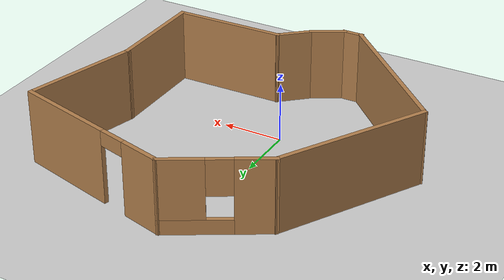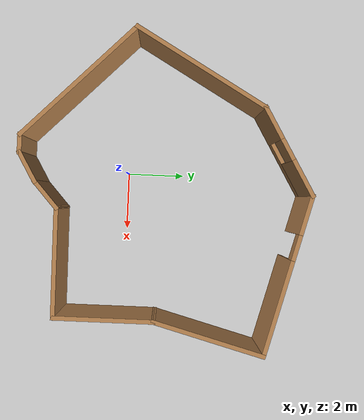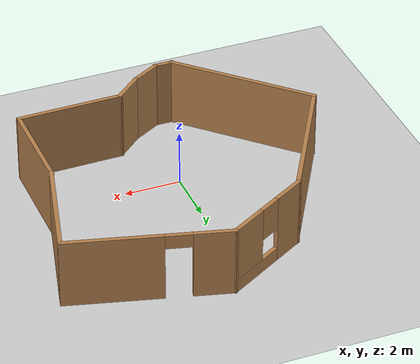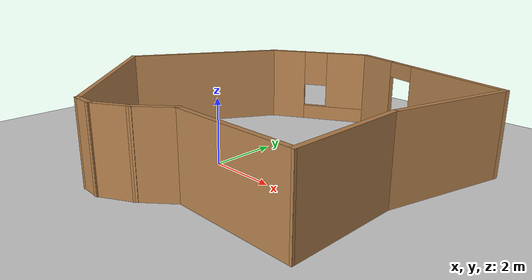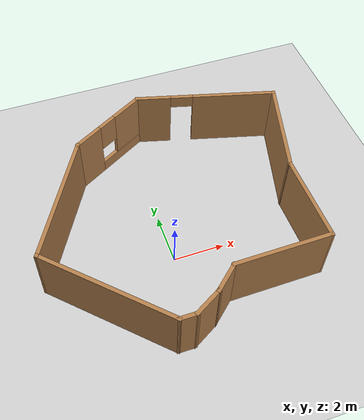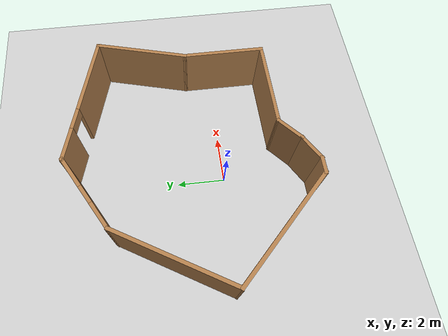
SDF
<sdf version="1.7">
 <world name="default">
  <light name="sun" type="directional">
   <pose>0 0 10 0 -0 0</pose>
   <diffuse>0.8 0.8 0.8 1</diffuse>
   <specular>0.2 0.2 0.2 1</specular>
   <attenuation>
    <range>1000</range>
    <constant>0.9</constant>
    <linear>0.01</linear>
    <quadratic>0.001</quadratic>
   </attenuation>
   <direction>-0.5 0.1 -0.9</direction>
   <spot><inner_angle>0</inner_angle><outer_angle>0</outer_angle><falloff>0</falloff></spot>
  </light>
  <model name="ground_plane">
   <static>1</static>
   <link name="link">
    <collision name="collision">
     <geometry><plane><normal>0 0 1</normal><size>100 100</size></plane></geometry>
     <surface><friction><ode><mu>100</mu><mu2>50</mu2></ode></friction></surface>
    </collision>
    <visual name="visual">
     <cast_shadows>0</cast_shadows>
     <geometry><plane><normal>0 0 1</normal><size>100 100</size></plane></geometry>
     <material>
      <script><uri>file://media/materials/scripts/gazebo.material</uri><name>Gazebo/Grey</name></script>
     </material>
    </visual>
   </link>
  </model>
  <gravity>0 0 -9.8</gravity>
  <magnetic_field>6e-06 2.3e-05 -4.2e-05</magnetic_field>
  <atmosphere type="adiabatic"/>
  <physics type="ode">
   <max_step_size>0.001</max_step_size>
   <real_time_factor>1</real_time_factor>
   <real_time_update_rate>1000</real_time_update_rate>
  </physics>
  <scene><ambient>0.4 0.4 0.4 1</ambient><background>0.7 0.7 0.7 1</background><shadows>1</shadows></scene>
  <audio><device>default</device></audio>
  <spherical_coordinates>
   <surface_model>EARTH_WGS84</surface_model>
   <latitude_deg>0</latitude_deg>
   <longitude_deg>0</longitude_deg>
   <elevation>0</elevation>
   <heading_deg>0</heading_deg>
  </spherical_coordinates>
  <model name="tutorial">
   <pose>0.53828 1.36644 0 0 -0 0</pose>
   <link name="Wall_0">
    <collision name="Wall_0_Collision">
     <geometry><box><size>0.75 0.15 2.5</size></box></geometry>
     <pose>0 0 1.25 0 -0 0</pose>
    </collision>
    <visual name="Wall_0_Visual">
     <pose>0 0 1.25 0 -0 0</pose>
     <geometry><box><size>0.75 0.15 2.5</size></box></geometry>
     <material>
      <script><uri>file://media/materials/scripts/gazebo.material</uri><name>Gazebo/Wood</name></script>
      <ambient>1 1 1 1</ambient>
     </material>
     <meta><layer>0</layer></meta>
    </visual>
    <pose>-1.34006 -4.93557 0 0 -0 0</pose>
   </link>
   <link name="Wall_1">
    <collision name="Wall_1_Collision">
     <geometry><box><size>1.25 0.15 2.5</size></box></geometry>
     <pose>0 0 1.25 0 -0 0</pose>
    </collision>
    <visual name="Wall_1_Visual">
     <pose>0 0 1.25 0 -0 0</pose>
     <geometry><box><size>1.25 0.15 2.5</size></box></geometry>
     <material>
      <script><uri>file://media/materials/scripts/gazebo.material</uri><name>Gazebo/Wood</name></script>
      <ambient>1 1 1 1</ambient>
     </material>
     <meta><layer>0</layer></meta>
    </visual>
    <pose>-0.563744 -4.66057 0 0 -0 0.523599</pose>
   </link>
   <link name="Wall_10">
    <collision name="Wall_10_Collision">
     <geometry><box><size>3.5 0.15 2.5</size></box></geometry>
     <pose>0 0 1.25 0 -0 0</pose>
    </collision>
    <visual name="Wall_10_Visual">
     <pose>0 0 1.25 0 -0 0</pose>
     <geometry><box><size>3.5 0.15 2.5</size></box></geometry>
     <material>
      <script><uri>file://media/materials/scripts/gazebo.material</uri><name>Gazebo/Wood</name></script>
      <ambient>1 1 1 1</ambient>
     </material>
     <meta><layer>0</layer></meta>
    </visual>
    <pose>4.44084 -1.90402 0 0 -0 -1.5708</pose>
   </link>
   <link name="Wall_11">
    <collision name="Wall_11_Collision">
     <geometry><box><size>3.81847 0.15 2.5</size></box></geometry>
     <pose>0 0 1.25 0 -0 0</pose>
    </collision>
    <visual name="Wall_11_Visual">
     <pose>0 0 1.25 0 -0 0</pose>
     <geometry><box><size>3.81847 0.15 2.5</size></box></geometry>
     <material>
      <script><uri>file://media/materials/scripts/gazebo.material</uri><name>Gazebo/Wood</name></script>
      <ambient>1 1 1 1</ambient>
     </material>
     <meta><layer>0</layer></meta>
    </visual>
    <pose>2.60671 -3.59914 0 0 -0 -3.13062</pose>
   </link>
   <link name="Wall_3">
    <collision name="Wall_3_Collision">
     <geometry><box><size>1.3019 0.15 2.5</size></box></geometry>
     <pose>0 0 1.25 0 -0 0</pose>
    </collision>
    <visual name="Wall_3_Visual">
     <pose>0 0 1.25 0 -0 0</pose>
     <geometry><box><size>1.3019 0.15 2.5</size></box></geometry>
     <material>
      <script><uri>file://media/materials/scripts/gazebo.material</uri><name>Gazebo/Wood</name></script>
      <ambient>1 1 1 1</ambient>
     </material>
     <meta><layer>0</layer></meta>
    </visual>
    <pose>0.342582 -4.00241 0 0 -0 -2.41375</pose>
   </link>
   <link name="Wall_5">
    <collision name="Wall_5_Collision">
     <geometry><box><size>5.5 0.15 2.5</size></box></geometry>
     <pose>0 0 1.25 0 -0 0</pose>
    </collision>
    <visual name="Wall_5_Visual">
     <pose>0 0 1.25 0 -0 0</pose>
     <geometry><box><size>5.5 0.15 2.5</size></box></geometry>
     <material>
      <script><uri>file://media/materials/scripts/gazebo.material</uri><name>Gazebo/Wood</name></script>
      <ambient>1 1 1 1</ambient>
     </material>
     <meta><layer>0</layer></meta>
    </visual>
    <pose>-3.53157 -3.04406 0 0 -0 2.35619</pose>
   </link>
   <link name="Wall_6">
    <collision name="Wall_6_Collision">
     <geometry><box><size>5.25 0.15 2.5</size></box></geometry>
     <pose>0 0 1.25 0 -0 0</pose>
    </collision>
    <visual name="Wall_6_Visual">
     <pose>0 0 1.25 0 -0 0</pose>
     <geometry><box><size>5.25 0.15 2.5</size></box></geometry>
     <material>
      <script><uri>file://media/materials/scripts/gazebo.material</uri><name>Gazebo/Wood</name></script>
      <ambient>1 1 1 1</ambient>
     </material>
     <meta><layer>0</layer></meta>
    </visual>
    <pose>-4.14808 1.05582 0 0 -0 1.0472</pose>
   </link>
   <link name="Wall_7">
    <pose>-1.42249 4.10168 0 0 -0 0.523599</pose>
    <visual name="Wall_7_Visual_0">
     <pose>-1.11852 0 1.25 0 -0 0</pose>
     <geometry><box><size>1.26295 0.15 2.5</size></box></geometry>
     <material>
      <script><uri>file://media/materials/scripts/gazebo.material</uri><name>Gazebo/Wood</name></script>
      <ambient>1 1 1 1</ambient>
     </material>
     <meta><layer>0</layer></meta>
    </visual>
    <collision name="Wall_7_Collision_0">
     <geometry><box><size>1.26295 0.15 2.5</size></box></geometry>
     <pose>-1.11852 0 1.25 0 -0 0</pose>
    </collision>
    <visual name="Wall_7_Visual_1">
     <pose>0.631477 0 0.25 0 -0 0</pose>
     <geometry><box><size>2.23705 0.15 0.5</size></box></geometry>
     <material>
      <script><uri>file://media/materials/scripts/gazebo.material</uri><name>Gazebo/Wood</name></script>
      <ambient>1 1 1 1</ambient>
     </material>
     <meta><layer>0</layer></meta>
    </visual>
    <collision name="Wall_7_Collision_1">
     <geometry><box><size>2.23705 0.15 0.5</size></box></geometry>
     <pose>0.631477 0 0.25 0 -0 0</pose>
    </collision>
    <visual name="Wall_7_Visual_2">
     <pose>1.03148 0 1.5 0 -0 0</pose>
     <geometry><box><size>1.43705 0.15 2</size></box></geometry>
     <material>
      <script><uri>file://media/materials/scripts/gazebo.material</uri><name>Gazebo/Wood</name></script>
      <ambient>1 1 1 1</ambient>
     </material>
     <meta><layer>0</layer></meta>
    </visual>
    <collision name="Wall_7_Collision_2">
     <geometry><box><size>1.43705 0.15 2</size></box></geometry>
     <pose>1.03148 0 1.5 0 -0 0</pose>
    </collision>
    <visual name="Wall_7_Visual_3">
     <pose>-0.087046 0 1.9 0 -0 0</pose>
     <geometry><box><size>0.8 0.15 1.2</size></box></geometry>
     <material>
      <script><uri>file://media/materials/scripts/gazebo.material</uri><name>Gazebo/Wood</name></script>
      <ambient>1 1 1 1</ambient>
     </material>
     <meta><layer>0</layer></meta>
    </visual>
    <collision name="Wall_7_Collision_3">
     <geometry><box><size>0.8 0.15 1.2</size></box></geometry>
     <pose>-0.087046 0 1.9 0 -0 0</pose>
    </collision>
   </link>
   <link name="Wall_8">
    <pose>2.7327 4.21449 0 0 -0 -0.261799</pose>
    <visual name="Wall_8_Visual_0">
     <pose>-2.15097 0 1.25 0 -0 0</pose>
     <geometry><box><size>1.44805 0.15 2.5</size></box></geometry>
     <material>
      <script><uri>file://media/materials/scripts/gazebo.material</uri><name>Gazebo/Wood</name></script>
      <ambient>1 1 1 1</ambient>
     </material>
     <meta><layer>0</layer></meta>
    </visual>
    <collision name="Wall_8_Collision_0">
     <geometry><box><size>1.44805 0.15 2.5</size></box></geometry>
     <pose>-2.15097 0 1.25 0 -0 0</pose>
    </collision>
    <visual name="Wall_8_Visual_1">
     <pose>1.17403 0 1.25 0 -0 0</pose>
     <geometry><box><size>3.40195 0.15 2.5</size></box></geometry>
     <material>
      <script><uri>file://media/materials/scripts/gazebo.material</uri><name>Gazebo/Wood</name></script>
      <ambient>1 1 1 1</ambient>
     </material>
     <meta><layer>0</layer></meta>
    </visual>
    <collision name="Wall_8_Collision_1">
     <geometry><box><size>3.40195 0.15 2.5</size></box></geometry>
     <pose>1.17403 0 1.25 0 -0 0</pose>
    </collision>
    <visual name="Wall_8_Visual_2">
     <pose>-0.976948 0 2.25 0 -0 0</pose>
     <geometry><box><size>0.9 0.15 0.5</size></box></geometry>
     <material>
      <script><uri>file://media/materials/scripts/gazebo.material</uri><name>Gazebo/Wood</name></script>
      <ambient>1 1 1 1</ambient>
     </material>
     <meta><layer>0</layer></meta>
    </visual>
    <collision name="Wall_8_Collision_2">
     <geometry><box><size>0.9 0.15 0.5</size></box></geometry>
     <pose>-0.976948 0 2.25 0 -0 0</pose>
    </collision>
   </link>
   <link name="Wall_9">
    <collision name="Wall_9_Collision">
     <geometry><box><size>4 0.15 2.5</size></box></geometry>
     <pose>0 0 1.25 0 -0 0</pose>
    </collision>
    <visual name="Wall_9_Visual">
     <pose>0 0 1.25 0 -0 0</pose>
     <geometry><box><size>4 0.15 2.5</size></box></geometry>
     <material>
      <script><uri>file://media/materials/scripts/gazebo.material</uri><name>Gazebo/Wood</name></script>
      <ambient>1 1 1 1</ambient>
     </material>
     <meta><layer>0</layer></meta>
    </visual>
    <pose>4.93906 1.63039 0 0 -0 -1.8326</pose>
   </link>
   <static>1</static>
  </model>
 </world>
</sdf>
